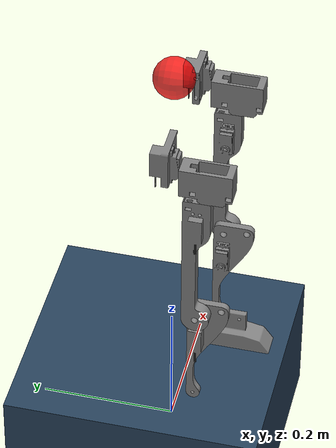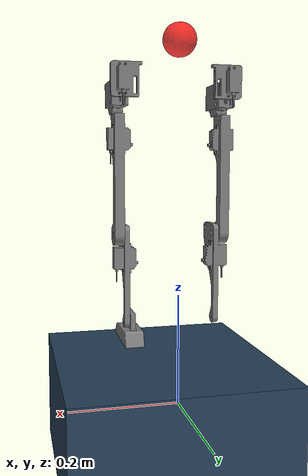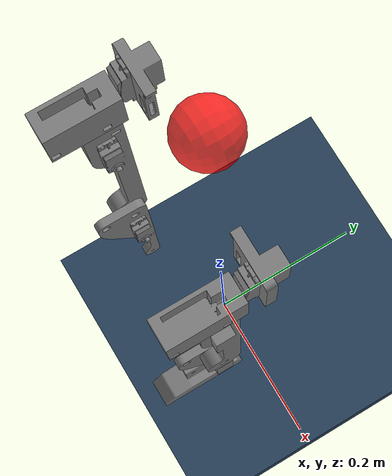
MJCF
<mujoco model="bars">
  <compiler angle="degree" coordinate="local" inertiafromgeom="true" meshdir="models/" />
  <option gravity="0 0 -9.81" timestep="0.005" iterations="100" tolerance="1e-8" />

  <visual>
    <headlight ambient=".7 .7 .7" diffuse="0.3 0.3 0.3" specular=".8 .8 .8" />
    <quality shadowsize="8192" />
  </visual>

  <default>
    <geom type="mesh" xyaxes="1 0 0 0 0 1" solref="0.02 0.5" solimp="0.95 0.99 0.001" friction="2.0 0.01 0.001" />
  </default>

  <asset>
    <mesh name="Pelvis" file="Pelvis.stl" scale="0.001 0.001 0.001" />
    <mesh name="LeftThigh" file="LeftThigh.stl" scale="0.001 0.001 0.001" />
    <mesh name="LeftCalf" file="LeftCalf.stl" scale="0.001 0.001 0.001" />
    <mesh name="LeftFoot" file="LeftFoot.stl" scale="0.001 0.001 0.001" />
    <mesh name="LeftRollHip" file="LeftRollHip.stl" scale="0.001 0.001 0.001" />
    <mesh name="LeftYawHip" file="LeftYawHip.stl" scale="0.001 0.001 0.001" />
    <mesh name="RightThigh" file="RightThigh.stl" scale="0.001 0.001 0.001" />
    <mesh name="RightCalf" file="RightCalf.stl" scale="0.001 0.001 0.001" />
    <mesh name="RightFoot" file="RightFoot.stl" scale="0.001 0.001 0.001" />
    <mesh name="RightRollHip" file="RightRollHip.stl" scale="0.001 0.001 0.001" />
    <mesh name="RightYawHip" file="RightYawHip.stl" scale="0.001 0.001 0.001" />

    <texture name="grid" type="2d" builtin="checker" width="512" height="512" rgb1=".1 .2 .3" rgb2=".2 .3 .4"/>
    <material name="grid" texture="grid" texrepeat="1 1" texuniform="true" reflectance=".2"/>
  </asset>

  <worldbody>
    <body name="Floor">
      <geom name="Floor" type="box" size="3 3 0.1" axisangle="1 0 0 0" material="grid" friction="2.0 0.01 0.001" />
    </body>

    <body name="Pelvis" axisangle="1 0 0 270" pos="0 0 0.65">

      <site name="com_marker" pos="0 0 0" size="0.03" rgba="1 0 0 0.8" type="sphere"/>      <freejoint />
      <geom mesh="Pelvis" />
      <body name="LeftRollHip">
        <joint name="left_pitch_hip" type="hinge" axis="1 0 0" pos="0 0.051 -0.015" damping="3.0" armature="0.2" stiffness="5.0" />
        <geom mesh="LeftRollHip" />
        <body name="LeftYawHip">
          <joint name="left_roll_hip" type="hinge" axis="0 0 1" pos="0.1 0.077 0" damping="3.0" armature="0.2" stiffness="5.0" />
          <geom mesh="LeftYawHip" />
          <body name="LeftThigh">
            <joint name="left_yaw_hip" type="hinge" axis="0 1 0" pos="0.099 0 -0.0669" damping="3.0" armature="0.2" stiffness="5.0" />
            <geom mesh="LeftThigh" />
            <body name="LeftCalf">
              <joint name="left_knee" type="hinge" axis="1 0 0" pos="0 0.3437 -0.0576" damping="3.0" armature="0.2" stiffness="5.0" />
              <geom mesh="LeftCalf" />
              <body name="LeftFoot" pos="0.092 0.5067 -0.0528" axisangle="0 1 0 90">
                <joint name="left_ankle" type="hinge" axis="0 0 -1" pos="0 0 0" damping="3.0" armature="0.2" stiffness="5.0" />
                <geom mesh="LeftFoot" friction="2.0 0.01 0.001" />
              </body>
            </body>
          </body>
        </body>
      </body>
      <body name="RightRollHip">
        <joint name="right_pitch_hip" type="hinge" axis="1 0 0" pos="0 0.051 -0.015" damping="3.0" armature="0.2" stiffness="5.0" />
        <geom mesh="RightRollHip" />
        <body name="RightYawHip">
          <joint name="right_roll_hip" type="hinge" axis="0 0 1" pos="-0.1 0.077 0" damping="3.0" armature="0.2" stiffness="5.0" />
          <geom mesh="RightYawHip" />
          <body name="RightThigh">
            <joint name="right_yaw_hip" type="hinge" axis="0 1 0" pos="-0.099 0 -0.0669" damping="3.0" armature="0.2" stiffness="5.0" />
            <geom mesh="RightThigh" />
            <body name="RightCalf">
              <joint name="right_knee" type="hinge" axis="1 0 0" pos="0 0.3437 -0.0576" damping="3.0" armature="0.2" stiffness="5.0" />
              <geom mesh="RightCalf" />
              <body name="RightFoot" pos="-0.0575 0.5067 -0.0528" axisangle="0 1 0 90">
                <joint name="right_ankle" type="hinge" axis="0 0 -1" pos="0 0 0" damping="3.0" armature="0.2" stiffness="5.0" />
                <geom mesh="RightFoot" friction="2.0 0.01 0.001" />
              </body>
            </body>
          </body>
        </body>
      </body>
    </body>
  </worldbody>

  <actuator>
    <position name="left_ankle" joint="left_ankle" ctrllimited="true" ctrlrange="-1.5708 1.5708" kp="15" kv="2.0" />
    <position name="left_knee" joint="left_knee" ctrllimited="true" ctrlrange="-1.5708 1.5708" kp="15" kv="2.0" />
    <position name="left_yaw_hip" joint="left_yaw_hip" ctrllimited="true" ctrlrange="-1.5708 1.5708" kp="10" kv="2.0" />
    <position name="left_roll_hip" joint="left_roll_hip" ctrllimited="true" ctrlrange="-1.5708 1.5708" kp="15" kv="2.0" />
    <position name="left_pitch_hip" joint="left_pitch_hip" ctrllimited="true" ctrlrange="-1.5708 1.5708" kp="10" kv="2.0" />

    <position name="right_ankle" joint="right_ankle" ctrllimited="true" ctrlrange="-1.5708 1.5708" kp="15" kv="2.0" />
    <position name="right_knee" joint="right_knee" ctrllimited="true" ctrlrange="-1.5708 1.5708" kp="15" kv="2.0" />
    <position name="right_yaw_hip" joint="right_yaw_hip" ctrllimited="true" ctrlrange="-1.5708 1.5708" kp="10" kv="2.0" />
    <position name="right_roll_hip" joint="right_roll_hip" ctrllimited="true" ctrlrange="-1.5708 1.5708" kp="15" kv="2.0" />
    <position name="right_pitch_hip" joint="right_pitch_hip" ctrllimited="true" ctrlrange="-1.5708 1.5708" kp="10" kv="2.0" />
  </actuator>

  <contact>
    <exclude body1="LeftFoot" body2="LeftCalf" />
    <exclude body1="LeftCalf" body2="LeftThigh" />
    <exclude body1="LeftThigh" body2="LeftYawHip" />
    <exclude body1="LeftYawHip" body2="LeftRollHip" />
    <exclude body1="LeftRollHip" body2="Pelvis" />

    <exclude body1="RightFoot" body2="RightCalf" />
    <exclude body1="RightCalf" body2="RightThigh" />
    <exclude body1="RightThigh" body2="RightYawHip" />
    <exclude body1="RightYawHip" body2="RightRollHip" />
    <exclude body1="RightRollHip" body2="Pelvis" />
  </contact>
</mujoco>
